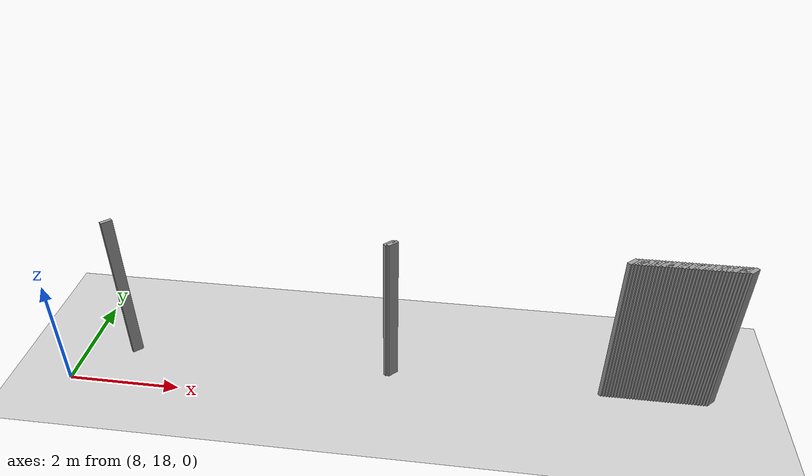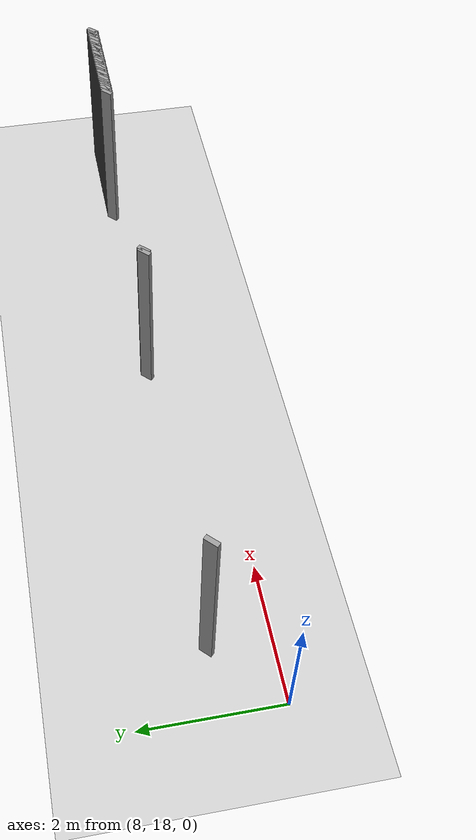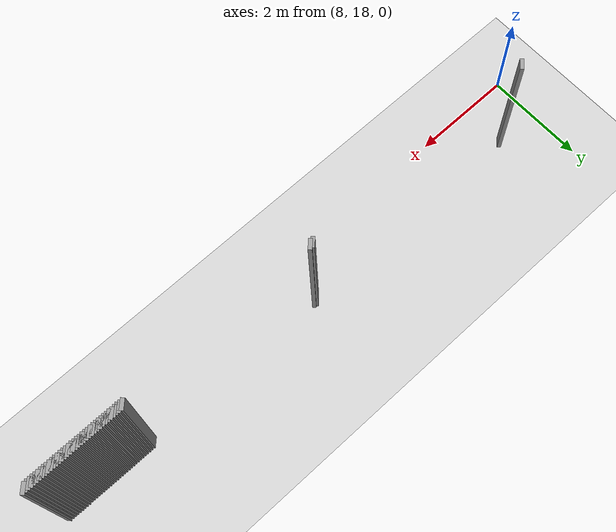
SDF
<sdf version="1.5">
 <world name="default">
  <include><uri>model://ground_plane</uri></include>
  <include><uri>model://sun</uri></include>
  <model name="grey_wall_513">
   <static>1</static>
   <link name="link">
    <pose>8.9 18.9  1.4 0 0 -0.785398163397</pose>
    <collision name="collision"><geometry><box><size>0.0707106781187 .2  2.8</size></box></geometry></collision>
    <visual name="visual">
     <cast_shadows>0</cast_shadows>
     <geometry><box><size>0.0707106781187 .2  2.8</size></box></geometry>
     <material>
      <script>
       <uri>model://grey_wall/materials/scripts</uri>
       <uri>model://grey_wall/materials/textures</uri>
       <name>vrc/grey_wall</name>
      </script>
     </material>
    </visual>
   </link>
  </model>
  <model name="grey_wall_514">
   <static>1</static>
   <link name="link">
    <pose>13.65 18.9  1.4 0 0 -0.785398163397</pose>
    <collision name="collision"><geometry><box><size>0.0707106781187 .2  2.8</size></box></geometry></collision>
    <visual name="visual">
     <cast_shadows>0</cast_shadows>
     <geometry><box><size>0.0707106781187 .2  2.8</size></box></geometry>
     <material>
      <script>
       <uri>model://grey_wall/materials/scripts</uri>
       <uri>model://grey_wall/materials/textures</uri>
       <name>vrc/grey_wall</name>
      </script>
     </material>
    </visual>
   </link>
  </model>
  <model name="grey_wall_515">
   <static>1</static>
   <link name="link">
    <pose>13.7 18.9  1.4 0 0 -0.785398163397</pose>
    <collision name="collision"><geometry><box><size>0.0707106781187 .2  2.8</size></box></geometry></collision>
    <visual name="visual">
     <cast_shadows>0</cast_shadows>
     <geometry><box><size>0.0707106781187 .2  2.8</size></box></geometry>
     <material>
      <script>
       <uri>model://grey_wall/materials/scripts</uri>
       <uri>model://grey_wall/materials/textures</uri>
       <name>vrc/grey_wall</name>
      </script>
     </material>
    </visual>
   </link>
  </model>
  <model name="grey_wall_516">
   <static>1</static>
   <link name="link">
    <pose>17.45 18.9  1.4 0 0 -0.785398163397</pose>
    <collision name="collision"><geometry><box><size>0.0707106781187 .2  2.8</size></box></geometry></collision>
    <visual name="visual">
     <cast_shadows>0</cast_shadows>
     <geometry><box><size>0.0707106781187 .2  2.8</size></box></geometry>
     <material>
      <script>
       <uri>model://grey_wall/materials/scripts</uri>
       <uri>model://grey_wall/materials/textures</uri>
       <name>vrc/grey_wall</name>
      </script>
     </material>
    </visual>
   </link>
  </model>
  <model name="grey_wall_517">
   <static>1</static>
   <link name="link">
    <pose>17.5 18.9  1.4 0 0 -0.785398163397</pose>
    <collision name="collision"><geometry><box><size>0.0707106781187 .2  2.8</size></box></geometry></collision>
    <visual name="visual">
     <cast_shadows>0</cast_shadows>
     <geometry><box><size>0.0707106781187 .2  2.8</size></box></geometry>
     <material>
      <script>
       <uri>model://grey_wall/materials/scripts</uri>
       <uri>model://grey_wall/materials/textures</uri>
       <name>vrc/grey_wall</name>
      </script>
     </material>
    </visual>
   </link>
  </model>
  <model name="grey_wall_518">
   <static>1</static>
   <link name="link">
    <pose>17.55 18.9  1.4 0 0 -0.785398163397</pose>
    <collision name="collision"><geometry><box><size>0.0707106781187 .2  2.8</size></box></geometry></collision>
    <visual name="visual">
     <cast_shadows>0</cast_shadows>
     <geometry><box><size>0.0707106781187 .2  2.8</size></box></geometry>
     <material>
      <script>
       <uri>model://grey_wall/materials/scripts</uri>
       <uri>model://grey_wall/materials/textures</uri>
       <name>vrc/grey_wall</name>
      </script>
     </material>
    </visual>
   </link>
  </model>
  <model name="grey_wall_519">
   <static>1</static>
   <link name="link">
    <pose>17.6 18.9  1.4 0 0 -0.785398163397</pose>
    <collision name="collision"><geometry><box><size>0.0707106781187 .2  2.8</size></box></geometry></collision>
    <visual name="visual">
     <cast_shadows>0</cast_shadows>
     <geometry><box><size>0.0707106781187 .2  2.8</size></box></geometry>
     <material>
      <script>
       <uri>model://grey_wall/materials/scripts</uri>
       <uri>model://grey_wall/materials/textures</uri>
       <name>vrc/grey_wall</name>
      </script>
     </material>
    </visual>
   </link>
  </model>
  <model name="grey_wall_520">
   <static>1</static>
   <link name="link">
    <pose>17.65 18.9  1.4 0 0 -0.785398163397</pose>
    <collision name="collision"><geometry><box><size>0.0707106781187 .2  2.8</size></box></geometry></collision>
    <visual name="visual">
     <cast_shadows>0</cast_shadows>
     <geometry><box><size>0.0707106781187 .2  2.8</size></box></geometry>
     <material>
      <script>
       <uri>model://grey_wall/materials/scripts</uri>
       <uri>model://grey_wall/materials/textures</uri>
       <name>vrc/grey_wall</name>
      </script>
     </material>
    </visual>
   </link>
  </model>
  <model name="grey_wall_521">
   <static>1</static>
   <link name="link">
    <pose>17.7 18.9  1.4 0 0 -0.785398163397</pose>
    <collision name="collision"><geometry><box><size>0.0707106781187 .2  2.8</size></box></geometry></collision>
    <visual name="visual">
     <cast_shadows>0</cast_shadows>
     <geometry><box><size>0.0707106781187 .2  2.8</size></box></geometry>
     <material>
      <script>
       <uri>model://grey_wall/materials/scripts</uri>
       <uri>model://grey_wall/materials/textures</uri>
       <name>vrc/grey_wall</name>
      </script>
     </material>
    </visual>
   </link>
  </model>
  <model name="grey_wall_522">
   <static>1</static>
   <link name="link">
    <pose>17.75 18.9  1.4 0 0 -0.785398163397</pose>
    <collision name="collision"><geometry><box><size>0.0707106781187 .2  2.8</size></box></geometry></collision>
    <visual name="visual">
     <cast_shadows>0</cast_shadows>
     <geometry><box><size>0.0707106781187 .2  2.8</size></box></geometry>
     <material>
      <script>
       <uri>model://grey_wall/materials/scripts</uri>
       <uri>model://grey_wall/materials/textures</uri>
       <name>vrc/grey_wall</name>
      </script>
     </material>
    </visual>
   </link>
  </model>
  <model name="grey_wall_523">
   <static>1</static>
   <link name="link">
    <pose>17.8 18.9  1.4 0 0 -0.785398163397</pose>
    <collision name="collision"><geometry><box><size>0.0707106781187 .2  2.8</size></box></geometry></collision>
    <visual name="visual">
     <cast_shadows>0</cast_shadows>
     <geometry><box><size>0.0707106781187 .2  2.8</size></box></geometry>
     <material>
      <script>
       <uri>model://grey_wall/materials/scripts</uri>
       <uri>model://grey_wall/materials/textures</uri>
       <name>vrc/grey_wall</name>
      </script>
     </material>
    </visual>
   </link>
  </model>
  <model name="grey_wall_524">
   <static>1</static>
   <link name="link">
    <pose>17.85 18.9  1.4 0 0 -0.785398163397</pose>
    <collision name="collision"><geometry><box><size>0.0707106781187 .2  2.8</size></box></geometry></collision>
    <visual name="visual">
     <cast_shadows>0</cast_shadows>
     <geometry><box><size>0.0707106781187 .2  2.8</size></box></geometry>
     <material>
      <script>
       <uri>model://grey_wall/materials/scripts</uri>
       <uri>model://grey_wall/materials/textures</uri>
       <name>vrc/grey_wall</name>
      </script>
     </material>
    </visual>
   </link>
  </model>
  <model name="grey_wall_525">
   <static>1</static>
   <link name="link">
    <pose>17.9 18.9  1.4 0 0 -0.785398163397</pose>
    <collision name="collision"><geometry><box><size>0.0707106781187 .2  2.8</size></box></geometry></collision>
    <visual name="visual">
     <cast_shadows>0</cast_shadows>
     <geometry><box><size>0.0707106781187 .2  2.8</size></box></geometry>
     <material>
      <script>
       <uri>model://grey_wall/materials/scripts</uri>
       <uri>model://grey_wall/materials/textures</uri>
       <name>vrc/grey_wall</name>
      </script>
     </material>
    </visual>
   </link>
  </model>
  <model name="grey_wall_526">
   <static>1</static>
   <link name="link">
    <pose>17.95 18.9  1.4 0 0 -0.785398163397</pose>
    <collision name="collision"><geometry><box><size>0.0707106781187 .2  2.8</size></box></geometry></collision>
    <visual name="visual">
     <cast_shadows>0</cast_shadows>
     <geometry><box><size>0.0707106781187 .2  2.8</size></box></geometry>
     <material>
      <script>
       <uri>model://grey_wall/materials/scripts</uri>
       <uri>model://grey_wall/materials/textures</uri>
       <name>vrc/grey_wall</name>
      </script>
     </material>
    </visual>
   </link>
  </model>
  <model name="grey_wall_527">
   <static>1</static>
   <link name="link">
    <pose>18.0 18.9  1.4 0 0 -0.785398163397</pose>
    <collision name="collision"><geometry><box><size>0.0707106781187 .2  2.8</size></box></geometry></collision>
    <visual name="visual">
     <cast_shadows>0</cast_shadows>
     <geometry><box><size>0.0707106781187 .2  2.8</size></box></geometry>
     <material>
      <script>
       <uri>model://grey_wall/materials/scripts</uri>
       <uri>model://grey_wall/materials/textures</uri>
       <name>vrc/grey_wall</name>
      </script>
     </material>
    </visual>
   </link>
  </model>
  <model name="grey_wall_528">
   <static>1</static>
   <link name="link">
    <pose>18.05 18.9  1.4 0 0 -0.785398163397</pose>
    <collision name="collision"><geometry><box><size>0.0707106781187 .2  2.8</size></box></geometry></collision>
    <visual name="visual">
     <cast_shadows>0</cast_shadows>
     <geometry><box><size>0.0707106781187 .2  2.8</size></box></geometry>
     <material>
      <script>
       <uri>model://grey_wall/materials/scripts</uri>
       <uri>model://grey_wall/materials/textures</uri>
       <name>vrc/grey_wall</name>
      </script>
     </material>
    </visual>
   </link>
  </model>
  <model name="grey_wall_529">
   <static>1</static>
   <link name="link">
    <pose>18.1 18.9  1.4 0 0 -0.785398163397</pose>
    <collision name="collision"><geometry><box><size>0.0707106781187 .2  2.8</size></box></geometry></collision>
    <visual name="visual">
     <cast_shadows>0</cast_shadows>
     <geometry><box><size>0.0707106781187 .2  2.8</size></box></geometry>
     <material>
      <script>
       <uri>model://grey_wall/materials/scripts</uri>
       <uri>model://grey_wall/materials/textures</uri>
       <name>vrc/grey_wall</name>
      </script>
     </material>
    </visual>
   </link>
  </model>
  <model name="grey_wall_530">
   <static>1</static>
   <link name="link">
    <pose>18.15 18.9  1.4 0 0 -0.785398163397</pose>
    <collision name="collision"><geometry><box><size>0.0707106781187 .2  2.8</size></box></geometry></collision>
    <visual name="visual">
     <cast_shadows>0</cast_shadows>
     <geometry><box><size>0.0707106781187 .2  2.8</size></box></geometry>
     <material>
      <script>
       <uri>model://grey_wall/materials/scripts</uri>
       <uri>model://grey_wall/materials/textures</uri>
       <name>vrc/grey_wall</name>
      </script>
     </material>
    </visual>
   </link>
  </model>
  <model name="grey_wall_531">
   <static>1</static>
   <link name="link">
    <pose>18.2 18.9  1.4 0 0 -0.785398163397</pose>
    <collision name="collision"><geometry><box><size>0.0707106781187 .2  2.8</size></box></geometry></collision>
    <visual name="visual">
     <cast_shadows>0</cast_shadows>
     <geometry><box><size>0.0707106781187 .2  2.8</size></box></geometry>
     <material>
      <script>
       <uri>model://grey_wall/materials/scripts</uri>
       <uri>model://grey_wall/materials/textures</uri>
       <name>vrc/grey_wall</name>
      </script>
     </material>
    </visual>
   </link>
  </model>
  <model name="grey_wall_532">
   <static>1</static>
   <link name="link">
    <pose>18.25 18.9  1.4 0 0 -0.785398163397</pose>
    <collision name="collision"><geometry><box><size>0.0707106781187 .2  2.8</size></box></geometry></collision>
    <visual name="visual">
     <cast_shadows>0</cast_shadows>
     <geometry><box><size>0.0707106781187 .2  2.8</size></box></geometry>
     <material>
      <script>
       <uri>model://grey_wall/materials/scripts</uri>
       <uri>model://grey_wall/materials/textures</uri>
       <name>vrc/grey_wall</name>
      </script>
     </material>
    </visual>
   </link>
  </model>
  <model name="grey_wall_533">
   <static>1</static>
   <link name="link">
    <pose>18.3 18.9  1.4 0 0 -0.785398163397</pose>
    <collision name="collision"><geometry><box><size>0.0707106781187 .2  2.8</size></box></geometry></collision>
    <visual name="visual">
     <cast_shadows>0</cast_shadows>
     <geometry><box><size>0.0707106781187 .2  2.8</size></box></geometry>
     <material>
      <script>
       <uri>model://grey_wall/materials/scripts</uri>
       <uri>model://grey_wall/materials/textures</uri>
       <name>vrc/grey_wall</name>
      </script>
     </material>
    </visual>
   </link>
  </model>
  <model name="grey_wall_534">
   <static>1</static>
   <link name="link">
    <pose>18.35 18.9  1.4 0 0 -0.785398163397</pose>
    <collision name="collision"><geometry><box><size>0.0707106781187 .2  2.8</size></box></geometry></collision>
    <visual name="visual">
     <cast_shadows>0</cast_shadows>
     <geometry><box><size>0.0707106781187 .2  2.8</size></box></geometry>
     <material>
      <script>
       <uri>model://grey_wall/materials/scripts</uri>
       <uri>model://grey_wall/materials/textures</uri>
       <name>vrc/grey_wall</name>
      </script>
     </material>
    </visual>
   </link>
  </model>
  <model name="grey_wall_535">
   <static>1</static>
   <link name="link">
    <pose>18.4 18.9  1.4 0 0 -0.785398163397</pose>
    <collision name="collision"><geometry><box><size>0.0707106781187 .2  2.8</size></box></geometry></collision>
    <visual name="visual">
     <cast_shadows>0</cast_shadows>
     <geometry><box><size>0.0707106781187 .2  2.8</size></box></geometry>
     <material>
      <script>
       <uri>model://grey_wall/materials/scripts</uri>
       <uri>model://grey_wall/materials/textures</uri>
       <name>vrc/grey_wall</name>
      </script>
     </material>
    </visual>
   </link>
  </model>
  <model name="grey_wall_536">
   <static>1</static>
   <link name="link">
    <pose>18.45 18.9  1.4 0 0 -0.785398163397</pose>
    <collision name="collision"><geometry><box><size>0.0707106781187 .2  2.8</size></box></geometry></collision>
    <visual name="visual">
     <cast_shadows>0</cast_shadows>
     <geometry><box><size>0.0707106781187 .2  2.8</size></box></geometry>
     <material>
      <script>
       <uri>model://grey_wall/materials/scripts</uri>
       <uri>model://grey_wall/materials/textures</uri>
       <name>vrc/grey_wall</name>
      </script>
     </material>
    </visual>
   </link>
  </model>
  <model name="grey_wall_537">
   <static>1</static>
   <link name="link">
    <pose>18.5 18.9  1.4 0 0 -0.785398163397</pose>
    <collision name="collision"><geometry><box><size>0.0707106781187 .2  2.8</size></box></geometry></collision>
    <visual name="visual">
     <cast_shadows>0</cast_shadows>
     <geometry><box><size>0.0707106781187 .2  2.8</size></box></geometry>
     <material>
      <script>
       <uri>model://grey_wall/materials/scripts</uri>
       <uri>model://grey_wall/materials/textures</uri>
       <name>vrc/grey_wall</name>
      </script>
     </material>
    </visual>
   </link>
  </model>
  <model name="grey_wall_538">
   <static>1</static>
   <link name="link">
    <pose>18.55 18.9  1.4 0 0 -0.785398163397</pose>
    <collision name="collision"><geometry><box><size>0.0707106781187 .2  2.8</size></box></geometry></collision>
    <visual name="visual">
     <cast_shadows>0</cast_shadows>
     <geometry><box><size>0.0707106781187 .2  2.8</size></box></geometry>
     <material>
      <script>
       <uri>model://grey_wall/materials/scripts</uri>
       <uri>model://grey_wall/materials/textures</uri>
       <name>vrc/grey_wall</name>
      </script>
     </material>
    </visual>
   </link>
  </model>
  <model name="grey_wall_539">
   <static>1</static>
   <link name="link">
    <pose>18.6 18.9  1.4 0 0 -0.785398163397</pose>
    <collision name="collision"><geometry><box><size>0.0707106781187 .2  2.8</size></box></geometry></collision>
    <visual name="visual">
     <cast_shadows>0</cast_shadows>
     <geometry><box><size>0.0707106781187 .2  2.8</size></box></geometry>
     <material>
      <script>
       <uri>model://grey_wall/materials/scripts</uri>
       <uri>model://grey_wall/materials/textures</uri>
       <name>vrc/grey_wall</name>
      </script>
     </material>
    </visual>
   </link>
  </model>
  <model name="grey_wall_540">
   <static>1</static>
   <link name="link">
    <pose>18.65 18.9  1.4 0 0 -0.785398163397</pose>
    <collision name="collision"><geometry><box><size>0.0707106781187 .2  2.8</size></box></geometry></collision>
    <visual name="visual">
     <cast_shadows>0</cast_shadows>
     <geometry><box><size>0.0707106781187 .2  2.8</size></box></geometry>
     <material>
      <script>
       <uri>model://grey_wall/materials/scripts</uri>
       <uri>model://grey_wall/materials/textures</uri>
       <name>vrc/grey_wall</name>
      </script>
     </material>
    </visual>
   </link>
  </model>
  <model name="grey_wall_541">
   <static>1</static>
   <link name="link">
    <pose>18.7 18.9  1.4 0 0 -0.785398163397</pose>
    <collision name="collision"><geometry><box><size>0.0707106781187 .2  2.8</size></box></geometry></collision>
    <visual name="visual">
     <cast_shadows>0</cast_shadows>
     <geometry><box><size>0.0707106781187 .2  2.8</size></box></geometry>
     <material>
      <script>
       <uri>model://grey_wall/materials/scripts</uri>
       <uri>model://grey_wall/materials/textures</uri>
       <name>vrc/grey_wall</name>
      </script>
     </material>
    </visual>
   </link>
  </model>
  <model name="grey_wall_542">
   <static>1</static>
   <link name="link">
    <pose>18.75 18.9  1.4 0 0 -0.785398163397</pose>
    <collision name="collision"><geometry><box><size>0.0707106781187 .2  2.8</size></box></geometry></collision>
    <visual name="visual">
     <cast_shadows>0</cast_shadows>
     <geometry><box><size>0.0707106781187 .2  2.8</size></box></geometry>
     <material>
      <script>
       <uri>model://grey_wall/materials/scripts</uri>
       <uri>model://grey_wall/materials/textures</uri>
       <name>vrc/grey_wall</name>
      </script>
     </material>
    </visual>
   </link>
  </model>
  <model name="grey_wall_543">
   <static>1</static>
   <link name="link">
    <pose>18.8 18.9  1.4 0 0 -0.785398163397</pose>
    <collision name="collision"><geometry><box><size>0.0707106781187 .2  2.8</size></box></geometry></collision>
    <visual name="visual">
     <cast_shadows>0</cast_shadows>
     <geometry><box><size>0.0707106781187 .2  2.8</size></box></geometry>
     <material>
      <script>
       <uri>model://grey_wall/materials/scripts</uri>
       <uri>model://grey_wall/materials/textures</uri>
       <name>vrc/grey_wall</name>
      </script>
     </material>
    </visual>
   </link>
  </model>
  <model name="grey_wall_544">
   <static>1</static>
   <link name="link">
    <pose>18.85 18.9  1.4 0 0 -0.785398163397</pose>
    <collision name="collision"><geometry><box><size>0.0707106781187 .2  2.8</size></box></geometry></collision>
    <visual name="visual">
     <cast_shadows>0</cast_shadows>
     <geometry><box><size>0.0707106781187 .2  2.8</size></box></geometry>
     <material>
      <script>
       <uri>model://grey_wall/materials/scripts</uri>
       <uri>model://grey_wall/materials/textures</uri>
       <name>vrc/grey_wall</name>
      </script>
     </material>
    </visual>
   </link>
  </model>
  <model name="grey_wall_545">
   <static>1</static>
   <link name="link">
    <pose>18.9 18.9  1.4 0 0 -0.785398163397</pose>
    <collision name="collision"><geometry><box><size>0.0707106781187 .2  2.8</size></box></geometry></collision>
    <visual name="visual">
     <cast_shadows>0</cast_shadows>
     <geometry><box><size>0.0707106781187 .2  2.8</size></box></geometry>
     <material>
      <script>
       <uri>model://grey_wall/materials/scripts</uri>
       <uri>model://grey_wall/materials/textures</uri>
       <name>vrc/grey_wall</name>
      </script>
     </material>
    </visual>
   </link>
  </model>
  <model name="grey_wall_546">
   <static>1</static>
   <link name="link">
    <pose>18.95 18.9  1.4 0 0 -0.785398163397</pose>
    <collision name="collision"><geometry><box><size>0.0707106781187 .2  2.8</size></box></geometry></collision>
    <visual name="visual">
     <cast_shadows>0</cast_shadows>
     <geometry><box><size>0.0707106781187 .2  2.8</size></box></geometry>
     <material>
      <script>
       <uri>model://grey_wall/materials/scripts</uri>
       <uri>model://grey_wall/materials/textures</uri>
       <name>vrc/grey_wall</name>
      </script>
     </material>
    </visual>
   </link>
  </model>
  <model name="grey_wall_547">
   <static>1</static>
   <link name="link">
    <pose>19.0 18.9  1.4 0 0 -0.785398163397</pose>
    <collision name="collision"><geometry><box><size>0.0707106781187 .2  2.8</size></box></geometry></collision>
    <visual name="visual">
     <cast_shadows>0</cast_shadows>
     <geometry><box><size>0.0707106781187 .2  2.8</size></box></geometry>
     <material>
      <script>
       <uri>model://grey_wall/materials/scripts</uri>
       <uri>model://grey_wall/materials/textures</uri>
       <name>vrc/grey_wall</name>
      </script>
     </material>
    </visual>
   </link>
  </model>
  <model name="grey_wall_548">
   <static>1</static>
   <link name="link">
    <pose>19.05 18.9  1.4 0 0 -0.785398163397</pose>
    <collision name="collision"><geometry><box><size>0.0707106781187 .2  2.8</size></box></geometry></collision>
    <visual name="visual">
     <cast_shadows>0</cast_shadows>
     <geometry><box><size>0.0707106781187 .2  2.8</size></box></geometry>
     <material>
      <script>
       <uri>model://grey_wall/materials/scripts</uri>
       <uri>model://grey_wall/materials/textures</uri>
       <name>vrc/grey_wall</name>
      </script>
     </material>
    </visual>
   </link>
  </model>
  <model name="grey_wall_549">
   <static>1</static>
   <link name="link">
    <pose>19.1 18.9  1.4 0 0 -0.785398163397</pose>
    <collision name="collision"><geometry><box><size>0.0707106781187 .2  2.8</size></box></geometry></collision>
    <visual name="visual">
     <cast_shadows>0</cast_shadows>
     <geometry><box><size>0.0707106781187 .2  2.8</size></box></geometry>
     <material>
      <script>
       <uri>model://grey_wall/materials/scripts</uri>
       <uri>model://grey_wall/materials/textures</uri>
       <name>vrc/grey_wall</name>
      </script>
     </material>
    </visual>
   </link>
  </model>
  <model name="grey_wall_550">
   <static>1</static>
   <link name="link">
    <pose>19.15 18.9  1.4 0 0 -0.785398163397</pose>
    <collision name="collision"><geometry><box><size>0.0707106781187 .2  2.8</size></box></geometry></collision>
    <visual name="visual">
     <cast_shadows>0</cast_shadows>
     <geometry><box><size>0.0707106781187 .2  2.8</size></box></geometry>
     <material>
      <script>
       <uri>model://grey_wall/materials/scripts</uri>
       <uri>model://grey_wall/materials/textures</uri>
       <name>vrc/grey_wall</name>
      </script>
     </material>
    </visual>
   </link>
  </model>
  <model name="grey_wall_551">
   <static>1</static>
   <link name="link">
    <pose>19.2 18.9  1.4 0 0 -0.785398163397</pose>
    <collision name="collision"><geometry><box><size>0.0707106781187 .2  2.8</size></box></geometry></collision>
    <visual name="visual">
     <cast_shadows>0</cast_shadows>
     <geometry><box><size>0.0707106781187 .2  2.8</size></box></geometry>
     <material>
      <script>
       <uri>model://grey_wall/materials/scripts</uri>
       <uri>model://grey_wall/materials/textures</uri>
       <name>vrc/grey_wall</name>
      </script>
     </material>
    </visual>
   </link>
  </model>
  <model name="grey_wall_552">
   <static>1</static>
   <link name="link">
    <pose>19.25 18.9  1.4 0 0 -0.785398163397</pose>
    <collision name="collision"><geometry><box><size>0.0707106781187 .2  2.8</size></box></geometry></collision>
    <visual name="visual">
     <cast_shadows>0</cast_shadows>
     <geometry><box><size>0.0707106781187 .2  2.8</size></box></geometry>
     <material>
      <script>
       <uri>model://grey_wall/materials/scripts</uri>
       <uri>model://grey_wall/materials/textures</uri>
       <name>vrc/grey_wall</name>
      </script>
     </material>
    </visual>
   </link>
  </model>
 </world>
</sdf>
